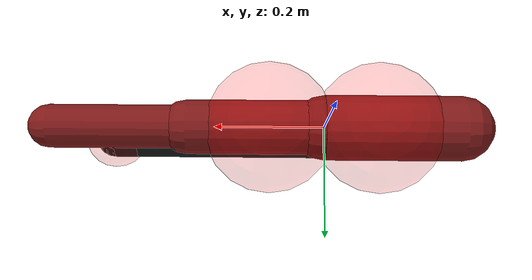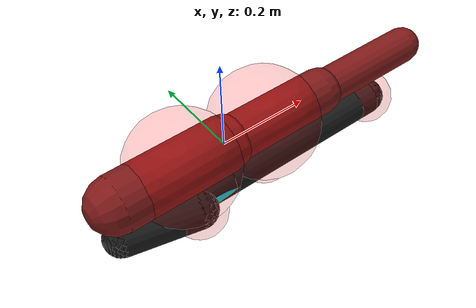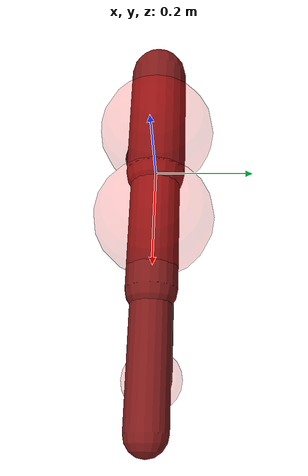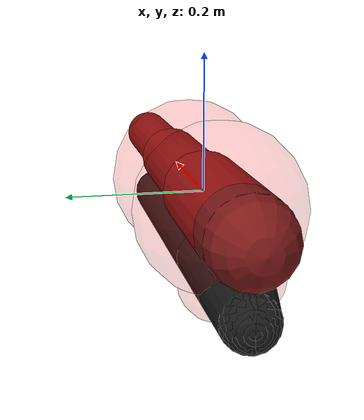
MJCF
<mujoco model="finger with orthotic">
    <option timestep="0.001" iterations="100" solver="Newton" tolerance="1e-8" integrator="implicitfast">
        <flag gravity="disable" contact="disable" energy="enable" />
    </option>

    <compiler angle="degree" />

    <visual>
        <rgba haze=".3 .3 .3 1" />
    </visual>

    <default>
        <joint type="hinge" pos="0 0 0" axis="0 0 1" stiffness="7.412998647196484" damping="0.03706499323598242" />
        <site size="0.06" rgba="1 0 0 .2" />
        <geom type="capsule" size="0.01" rgba=".1 .1 .1 1" />
        <tendon width="0.01" rgba="0 1 1 1" />
    </default>

    <asset>
        <texture type="skybox" builtin="gradient" rgb1="0.6 0.6 0.6" rgb2="0 0 0" width="512" height="512" />
        <texture name="texplane" type="2d" builtin="checker" rgb1=".25 .25 .25" rgb2=".3 .3 .3" width="512" height="512" mark="cross" markrgb=".8 .8 .8" />
        <material name="matplane" reflectance="0.3" texture="texplane" texrepeat="1 1" texuniform="true" />
    </asset>

    <worldbody>
        <light directional="true" diffuse=".8 .8 .8" specular=".2 .2 .2" pos="0 0 5" dir="0 0 -1" />
        <camera name="cam" pos="0 0 -1.2" xyaxes="1.000 0 0 0 -1.000 0" />

        <body name="finger" pos="0 0 0">
            <geom name="finger1" type="capsule" size="0.06" fromto="0 0 0  -.25 0 0" rgba=".5 .1 .1 1" />
            <site name="sPIPL" pos="-.1 0 0" size="0.12" />

            <body pos="0 0 0">
                <geom name="finger2" type="capsule" size="0.05" fromto="0 0 0  .25 0 0" rgba=".5 .1 .1 1" />
                <joint name="PIP" pos="0 0 0" stiffness="0" damping="0" />
                <site name="sPIPR" pos=".1 0 0" size="0.12" />

                <body pos=".25 0 0">
                    <geom name="finger3" type="capsule" size="0.04" fromto="0 0 0  .25 0 0" rgba=".5 .1 .1 1" />
                </body>
            </body>
        </body>

        <body name="orthosis" pos="0 0 -.1">
            <geom name="beamB" type="capsule" size="0.04" fromto="0.0 0.0 0.0 -0.25 -3.061616997868383e-17 0.0" />
            <site name="hBAL" pos="-.1 0 0" size="0.06" />

            <body name="Bnext" pos="0 0 0">
                <joint name="hingeBA" type="hinge" pos="0 0 0" axis="0 0 1" stiffness="7.412998647196484" damping="0.03706499323598242" />
                <site name="hBAR" pos=".1 0 0" size="0.06" />
                <geom name="beamA" type="capsule" size="0.04" fromto="0.0 0.0 0.0 0.39999936248303747 0.0 0.0" />

                <body name="Anext" pos="0.39999936248303747 0.0 0.0">
                    <joint name="hingeAL" type="hinge" pos="0 0 0" axis="0 0 1" stiffness="7.412998647196484" damping="0.03706499323598242" />
                    <geom name="smallBodyAL" type="sphere" size="0.04" pos="0 0 0" />
                    <site name="hAL" pos="0 0 0" size="0.06" />
                </body>
            </body>

            <geom name="beamD" type="capsule" size="0.04" fromto="-0.25 -3.061616997868383e-17 0.0 -0.09271870971192642 -0.03746079034921514 0.0" />
            <body name="Dnext" pos="-0.09271870971192642 -0.03746079034921514 0.0">
                <joint name="hingeDL" type="hinge" pos="0 0 0" axis="0 0 -1" stiffness="7.412998647196484" damping="0.03706499323598242" />
                <geom name="smallBodyDL" type="sphere" size="0.04" pos="0 0 0" />
                <site name="hDL" pos="0 0 0" size="0.06" />
            </body>
        </body>
    </worldbody>

    <equality>

        <weld site1="hBAR" site2="sPIPR" />

    </equality>

    <tendon>
        <spatial name="bendingTendon" limited="true" range="0.49414007070982374 0.9882801414196475" width="0.01" solimplimit="0.001 0.8 0.001 0.5 2" solreflimit="-44197.99650899748 -0.2209899825449874">
            <site site="hDL" />
            <site site="hAL" />
        </spatial>

        <spatial name="extensionTendon" limited="true" range="0 0.49414007070982374" width="0.01" solimplimit="0.001 0.001 0.001 0.5 1" solreflimit="-202363.59765860933 -6745.453255286978">
            <site site="hDL" />
            <site site="hAL" />
        </spatial>
    </tendon>

    <actuator>
        <motor name="finger_bend" joint="PIP" ctrlrange="-10 10" gear="100" />
    </actuator>

    <sensor>
        <force name="finger_force" site="sPIPR" />
        <torque name="finger_torque" site="sPIPR" />
        <force name="tendon_force" site="hDL" />
    </sensor>
</mujoco>
